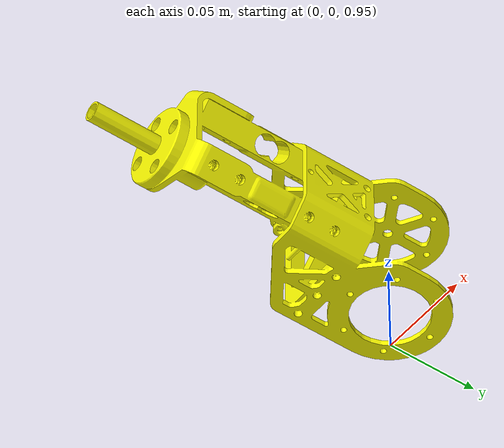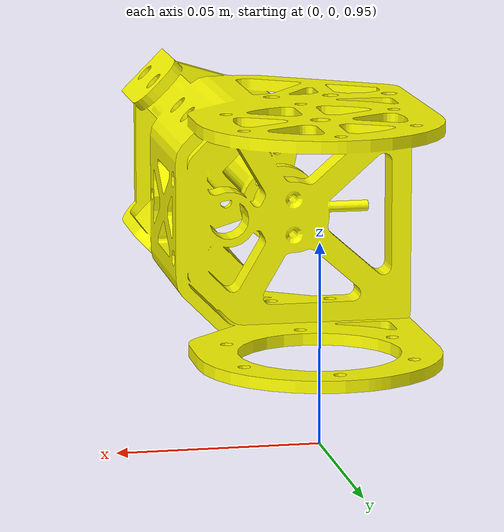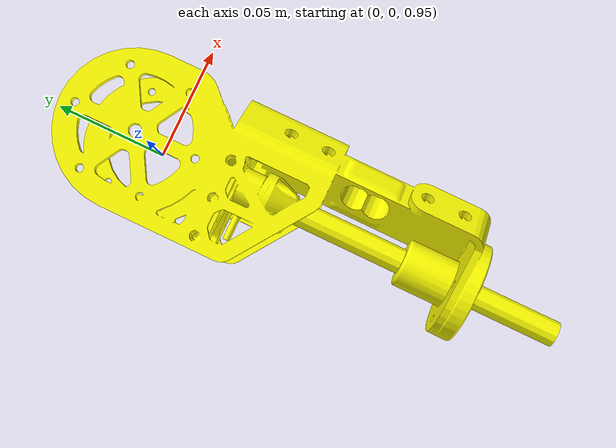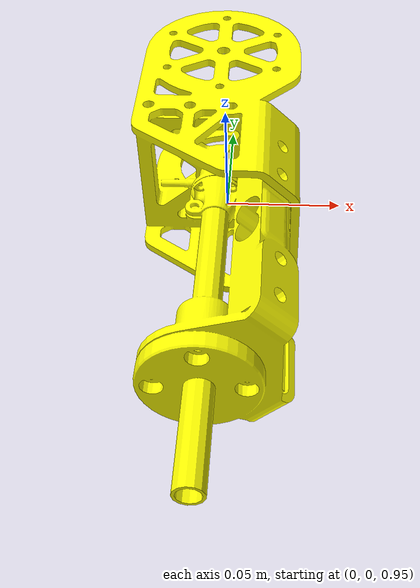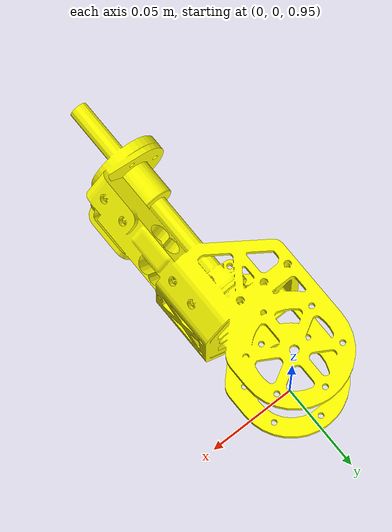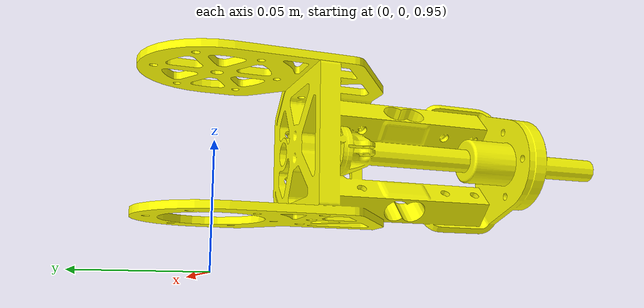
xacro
<?xml version="1.0"?>
<robot xmlns:xacro="http://www.ros.org/wiki/xacro" name="ankle_minimal_autostart">

    <link name="world"/>

    <joint name="world_to_ankle" type="continuous">
        <parent link="world"/>
        <child link="ankle_link"/>

        <origin xyz="0 0 1.0" rpy="0 0 0"/>

        <axis xyz="0 1 0"/>  <!-- Y-axis for pitch rotation -->

        <!-- Damping 0.0 allows it to swing freely for inertia calculation -->
        <dynamics damping="0.00130" friction="0.0140"/>
    </joint>

    <link name="ankle_link">
        <inertial>
            <origin xyz="0.004248 -0.046 0.0004" rpy="0 0 0"/>
            <mass value="0.721"/>
            <inertia ixx="0.00320" ixy="0.00019" ixz="-0.00004"
                     iyy="0.00141" iyz="-0.00083"
                     izz="0.00280"/>
        </inertial>
        <visual>
            <origin xyz="0 0 0" rpy="0 0 0"/>
            <geometry>
                <mesh filename="package://test_station_description/meshes/ankle_link.STL"/>
            </geometry>
            <material name="yellow">
                <color rgba="1.0 1.0 0.0 1.0"/>
            </material>
        </visual>
        <collision>
            <origin xyz="0 0 0" rpy="0 0 0"/>
            <geometry>
                <cylinder length="0.2" radius="0.025"/>
            </geometry>
        </collision>
    </link>

    <!-- GAZEBO CONFIGURATION                      -->

    <gazebo reference="world">
        <static>true</static>
    </gazebo>

    <gazebo reference="ankle_link">
        <gravity>true</gravity>  <!-- ✅ EXPLICIT GRAVITY -->
        <self_collide>false</self_collide>
        <material>Gazebo/Yellow</material>
    </gazebo>

    <!--
       Joint State Publisher Plugin
       Publishes to Gazebo's /joint_states topic
       (Needs ROS2 bridge to be visible in ROS2!)
    -->
    <gazebo>
        <plugin filename="libignition-gazebo-joint-state-publisher-system.so"
                name="ignition::gazebo::systems::JointStatePublisher">
            <topic>/joint_states</topic>
            <joint_name>world_to_ankle</joint_name>
        </plugin>
    </gazebo>

</robot>
